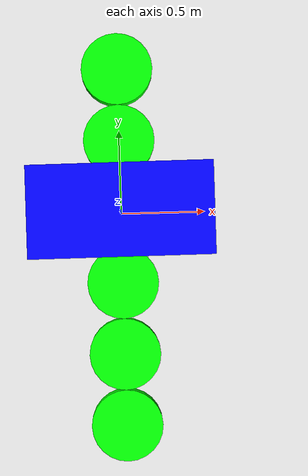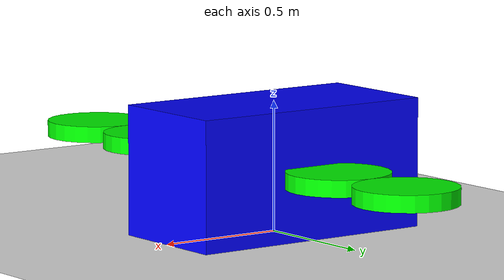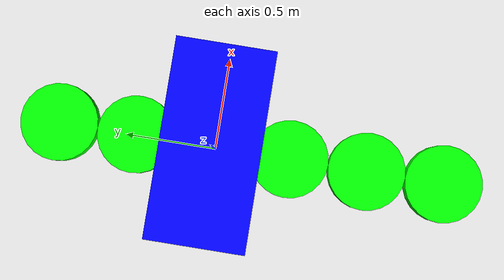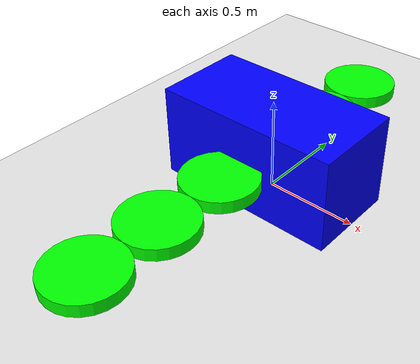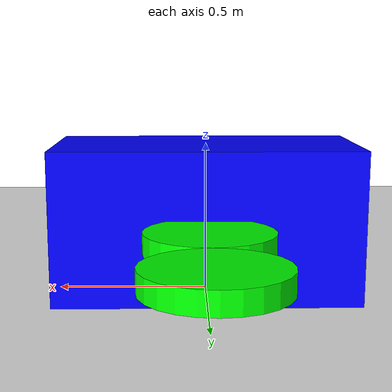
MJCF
<mujoco><worldbody><light diffuse=".5 .5 .5" pos="0 0 3" dir="0 0 -1" /><geom name="ground" type="plane" size="5 5 0.1" rgba=".9 .9 .9 1" /><body name="body"><freejoint name="root" /><geom name="torso" type="box" size="0.5 0.25 0.25" pos="0 0 0.25" rgba="0 0 1 1" mass="0.1" /><body name="wing0" pos="0 0.4 0.25" euler="0 0 90"><joint name="wing0link" type="hinge" axis="0 0 1" range="-1 1" /><geom name="wing0" type="cylinder" size="0.2 0.0325" pos="0 0 0" rgba="0 1 0 1" mass="1" /><body name="wing1" euler="0 0 0" /><joint name="wing1link" type="hinge" pos="0 0 0" axis="1 0 0" range="-91 91" /><geom name="wing1" type="cylinder" size="0.2 0.0325" pos="0.4 0 0" rgba="0 1 0 1" mass="1.5" /></body><body name="wingl0" pos="0 -0.4 0.25" euler="0 0 90"><joint name="wingl0link" type="hinge" axis="0 0 1" range="-1 1" /><geom name="wingl0" type="cylinder" size="0.2 0.0325" pos="0 0 0" rgba="0 1 0 1" mass="1" /><body name="wingl1" euler="0 0 0"><body name="wingl2" euler="0 0 0" /><joint name="wingl2link" type="hinge" pos="0 0 0" axis="1 0 0" range="-56 56" /><geom name="wingl2" type="cylinder" size="0.2 0.0325" pos="-0.8 0 0" rgba="0 1 0 1" mass="1.5" /></body><joint name="wingl1link" type="hinge" pos="0 0 0" axis="1 0 0" range="-100 100" /><geom name="wingl1" type="cylinder" size="0.2 0.0325" pos="-0.4 0 0" rgba="0 1 0 1" mass="1.5" /></body></body></worldbody><actuator><motor name="wing0" joint="wing0link" gear="48" /><motor name="wing1" joint="wing1link" gear="79" /><motor name="wingl0" joint="wingl0link" gear="96" /><motor name="wingl1" joint="wingl1link" gear="79" /><motor name="wingl2" joint="wingl2link" gear="63" /></actuator></mujoco>
